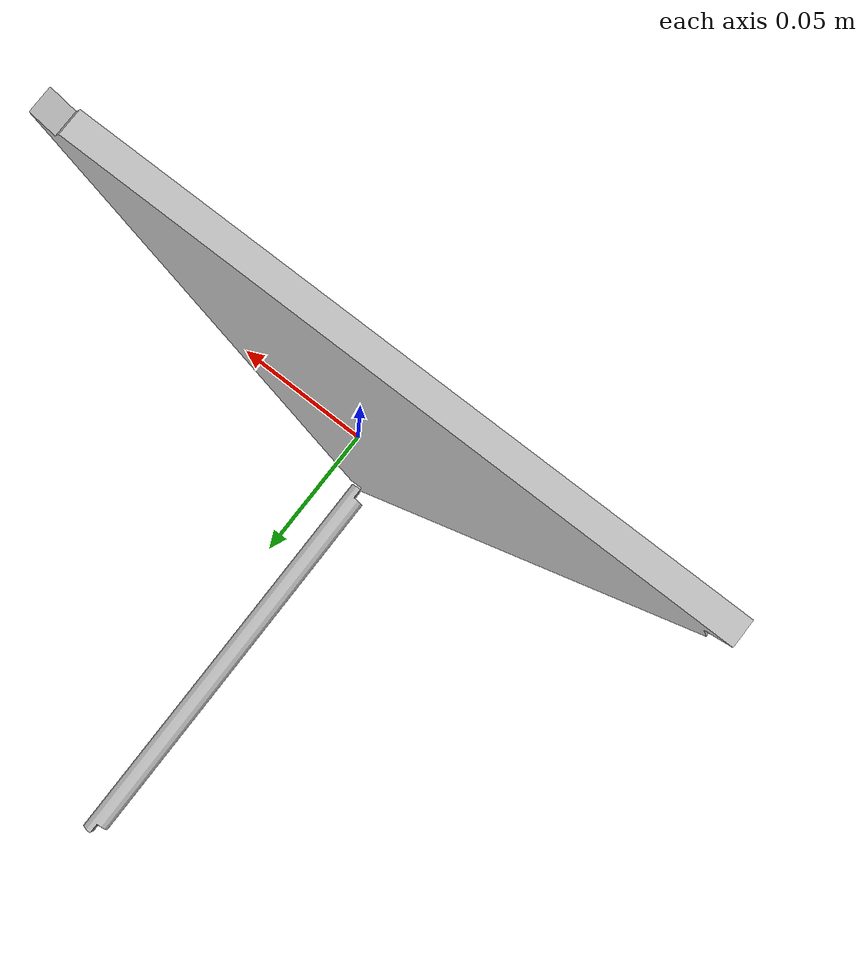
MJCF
<mujoco model="GTPR">
    <compiler angle="radian" />
    <size njmax="500" nconmax="100" />
	<option gravity="0 9.81 0"/>
    <asset>
        <mesh name="base_link" file="base_link.STL" />
        <mesh name="A1" file="A1.STL" />
    </asset>
    <worldbody>
	    <body name="base_link" pos="-2.3525E-17 -0.005 2.3559E-17" >
        <geom type="mesh" rgba="0.7451 0.7451 0.7451 1" mesh="base_link" />
            <body name="A1" pos="0 0.2 -0.15" quat="0.707105 0.707108 0 0">
            <inertial pos="5.3777e-05 4.4185e-09 0.1" mass="0.015311" diaginertia="4.8682e-05 4.8682e-05 1.9135e-07" />
            <joint name="A1" pos="0 0 0.2" axis="-40 0 0" type="hinge" range="-2.2854 1.714602" damping="0.01"/>
            <geom type="mesh" rgba="0.7451 0.7451 0.7451 1" mesh="A1" />
            </body>
        </body>
    </worldbody>
	 <actuator>
        <motor name="A1" joint="A1"/>
    </actuator>
</mujoco>
